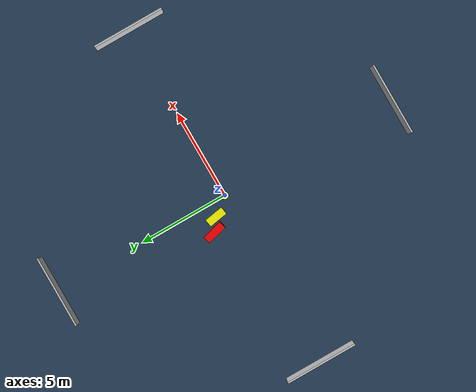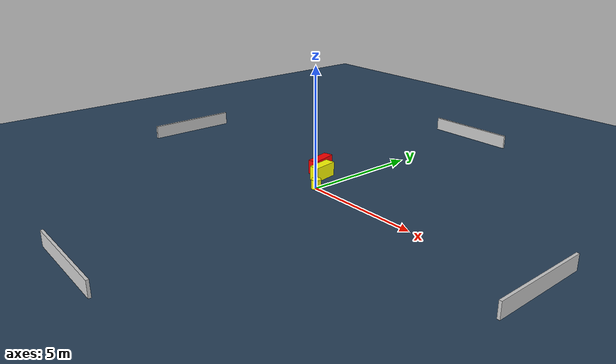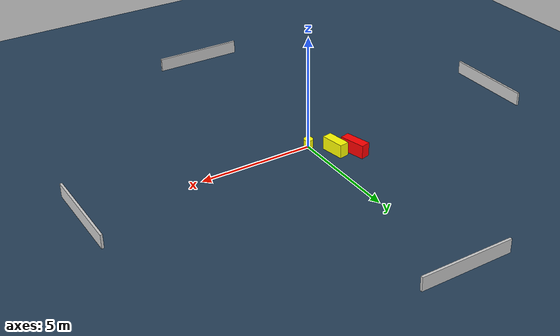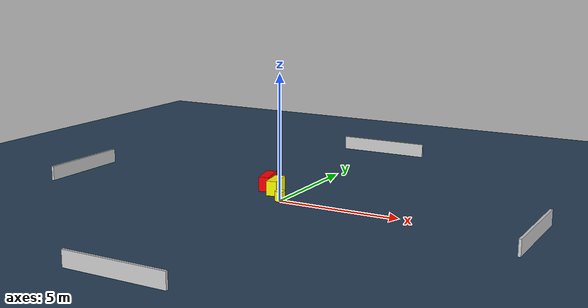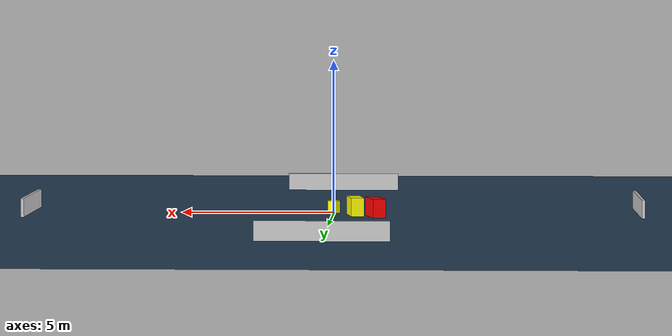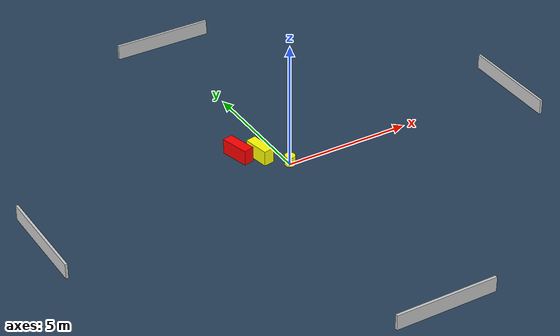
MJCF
<?xml version="1.0" ?>
<mujoco model="generated_environment">
  <option timestep="0.01" integrator="RK4" cone="elliptic"/>
  <default>
    <geom density="1"/>
  </default>
  <asset>
    <texture builtin="gradient" height="3072" name="skybox" rgb1="0.3 0.5 0.7" rgb2="0 0 0" type="skybox" width="512"/>
    <texture builtin="checker" height="300" name="groundplane" rgb1="0.2 0.3 0.4" rgb2="0.1 0.2 0.3" type="2d" width="300"/>
    <material name="groundplane" reflectance="0.2" texrepeat="5 5" texture="groundplane"/>
  </asset>
  <worldbody>
    <light dir="0 0 -1" directional="true" pos="0 0 1.5"/>
    <geom condim="3" friction="0.5 0.005 0.001" material="groundplane" name="floor" pos="0 0 0" size="0 0 0.05" type="plane"/>
    <body name="walls">
      <geom name="wall_1" condim="4" pos="-10.0 0.0 0.3" rgba="0.800000011920929 0.800000011920929 0.800000011920929 1.0" size="0.05 2.0 0.3" type="box"/>
      <geom name="wall_2" condim="4" pos="10.0 0.0 0.3" rgba="0.800000011920929 0.800000011920929 0.800000011920929 1.0" size="0.05 2.0 0.3" type="box"/>
      <geom name="wall_3" condim="4" pos="0.0 -10.0 0.3" rgba="0.800000011920929 0.800000011920929 0.800000011920929 1.0" size="2.0 0.05 0.3" type="box"/>
      <geom name="wall_4" condim="4" pos="0.0 10.0 0.3" rgba="0.800000011920929 0.800000011920929 0.800000011920929 1.0" size="2.0 0.05 0.3" type="box"/>
    </body>
    <body name="robot">
      <joint name="joint_x" type="slide" pos="0 0 0" axis="1 0 0"/>
      <joint name="joint_y" type="slide" pos="0 0 0" axis="0 1 0"/>
      <geom name="robot" type="cylinder" pos="0.0 0.0 0.2" size="0.2 0.2 0.0" mass="5.0" friction="1.0 0.005 0.0001" condim="4" rgba="1.0 1.0 0.0 1.0"/>
    </body>
    <body name="obstacle_1_movable">
      <geom name="obstacle_1_movable" condim="4" pos="-0.7315165085077695 0.9414872725687687 0.3" euler="0 0 189.69804923869705" friction="0.0 0.005 0.001" rgba="1.0 1.0 0.0 1.0" size="0.20938593959327254 0.5253093732818512 0.3" type="box" mass="0.1"/>
      <joint type="free"/>
    </body>
    <body name="obstacle_2_static">
      <geom name="obstacle_2_static" condim="4" pos="-1.3891763581173742 1.4071544003340564 0.3" euler="0 0 14.234703563976643" friction="0.0 0.005 0.001" rgba="1.0 0.0 0.0 1.0" size="0.2071871570621079 0.5763839747264241 0.3" type="box"/>
    </body>
  </worldbody>
  <actuator>
    <motor name="actuator_x" joint="joint_x" gear="1" ctrlrange="-1 1"/>
    <motor name="actuator_y" joint="joint_y" gear="1" ctrlrange="-1 1"/>
  </actuator>
</mujoco>
